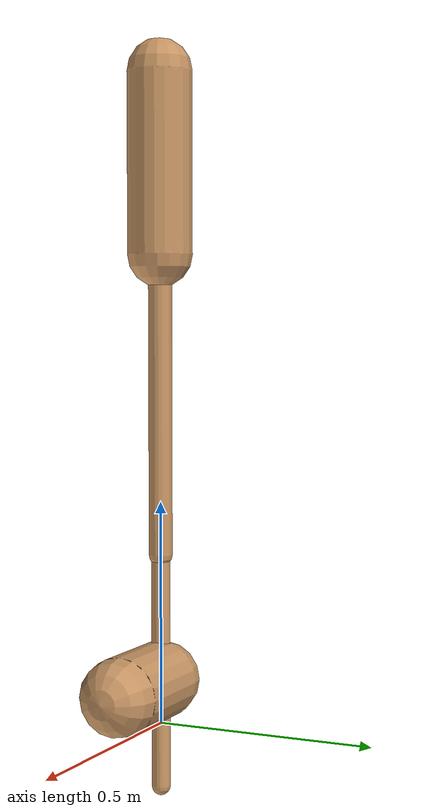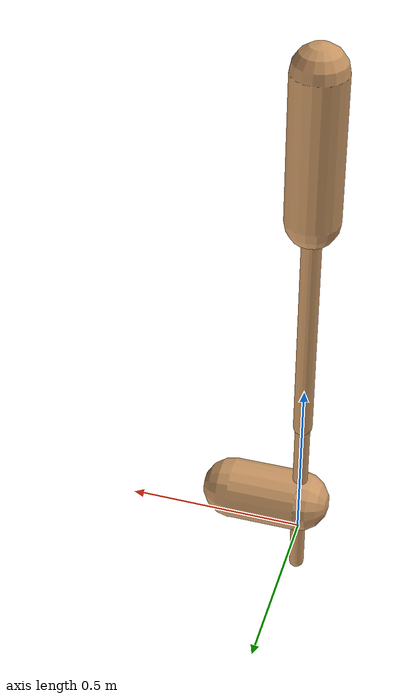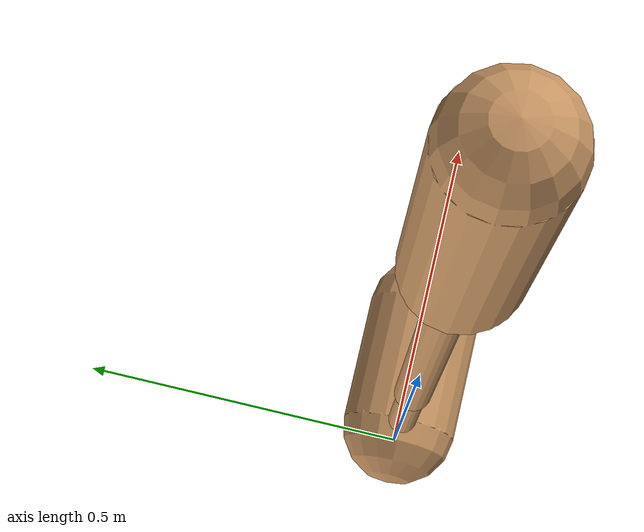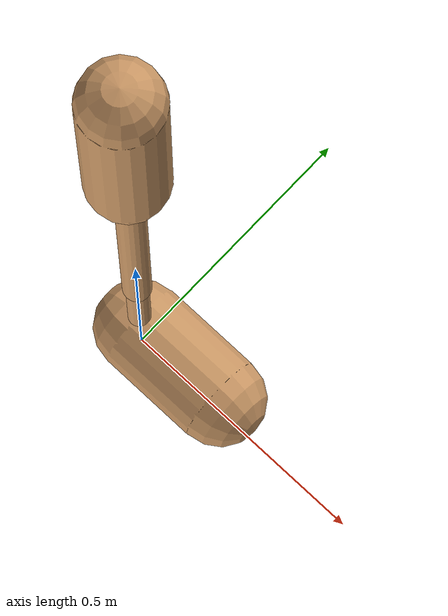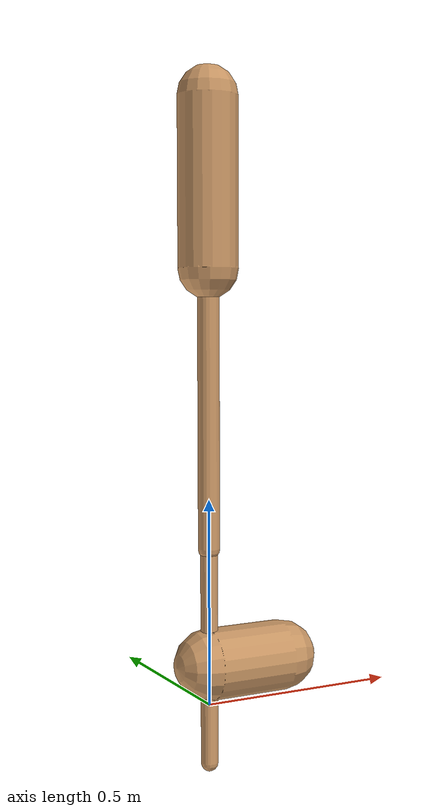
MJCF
<mujoco model="walker2d">
  <compiler angle="degree" coordinate="global" inertiafromgeom="true" />
  <default>
    <joint armature="0.01" damping=".1" limited="true" />
    <geom conaffinity="0" condim="3" contype="1" density="1000" friction="0.8 .1 .1" rgba="0.8 0.6 .4 1" />
  </default>
  <option integrator="RK4" timestep="0.002" />
  <worldbody>

    <body name="torso" pos="0 0 0.4606334598409369">
      <joint armature="0" axis="1 0 0" damping="0" limited="false" name="ignorex" pos="0 0 0" stiffness="0" type="slide" />
      <joint armature="0" axis="0 0 1" damping="0" limited="false" name="ignorez" pos="0 0 0" ref="1.25" stiffness="0" type="slide" />
      <joint armature="0" axis="0 1 0" damping="0" limited="false" name="ignorey" pos="0 0 0" stiffness="0" type="hinge" />
      <geom fromto="0 0 1.45 0 0 1.05" name="torso_geom" size="0.07237966016906357" type="capsule" />
      <body name="thigh">
        <joint axis="0 -1 0" name="thigh_joint" pos="0 0 1.05" range="-150 0" type="hinge" />
        <geom fromto="0.0 0.0 1.05 0.0 0.0 0.3818052032332404" name="thigh_geom" size="0.02641939298380513" type="capsule" />
        <body name="leg" pos="0.0 0.0 -0.21819479676675957">
          <joint axis="0 -1 0" name="leg_joint" pos="0 0 0.6" range="-150 0" type="hinge" />
          <geom fromto="0.0 0.0 0.6 0.0 0.0 -0.1424386630741773" name="leg_geom" size="0.021135514387044103" type="capsule" />
          <body name="foot" pos="0.0 0.0 -0.2424386630741773">
            <joint axis="0 -1 0" name="foot_joint" pos="0 0 0.1" range="-45 45" type="hinge" />
            <geom fromto="0.0 0.0 0.1 0.19525751909689432 0.0 0.1" name="foot_geom" size="0.08643954290779449" type="capsule" />
          </body>
        </body>
      </body>

      <body name="thigh_left">
        <joint axis="0 -1 0" name="thigh_left_joint" pos="0 0 1.05" range="-150 0" type="hinge" />
        <geom fromto="0.0 0.0 1.05 0.0 0.0 0.3818052032332404" name="thigh_left_geom" rgba=".7 .3 .6 1" size="0.02641939298380513" type="capsule" />
        <body name="leg_left" pos="0.0 0.0 -0.21819479676675957">
          <joint axis="0 -1 0" name="leg_left_joint" pos="0 0 0.6" range="-150 0" type="hinge" />
          <geom fromto="0.0 0.0 0.6 0.0 0.0 -0.1424386630741773" name="leg_left_geom" rgba=".7 .3 .6 1" size="0.021135514387044103" type="capsule" />
          <body name="foot_left" pos="0.0 0.0 -0.2424386630741773">
            <joint axis="0 -1 0" name="foot_left_joint" pos="0 0 0.1" range="-45 45" type="hinge" />
            <geom fromto="0.0 0.0 0.1 0.19525751909689432 0.0 0.1" name="foot_left_geom" rgba=".7 .3 .6 1" size="0.08643954290779449" type="capsule" />
          </body>
        </body>
      </body>
    </body>
  </worldbody>
  <actuator>

    <motor ctrllimited="true" ctrlrange="-1.0 1.0" gear="100" joint="thigh_joint" />
    <motor ctrllimited="true" ctrlrange="-1.0 1.0" gear="100" joint="leg_joint" />
    <motor ctrllimited="true" ctrlrange="-1.0 1.0" gear="100" joint="foot_joint" />
    <motor ctrllimited="true" ctrlrange="-1.0 1.0" gear="100" joint="thigh_left_joint" />
    <motor ctrllimited="true" ctrlrange="-1.0 1.0" gear="100" joint="leg_left_joint" />
    <motor ctrllimited="true" ctrlrange="-1.0 1.0" gear="100" joint="foot_left_joint" />

  </actuator>
</mujoco>
